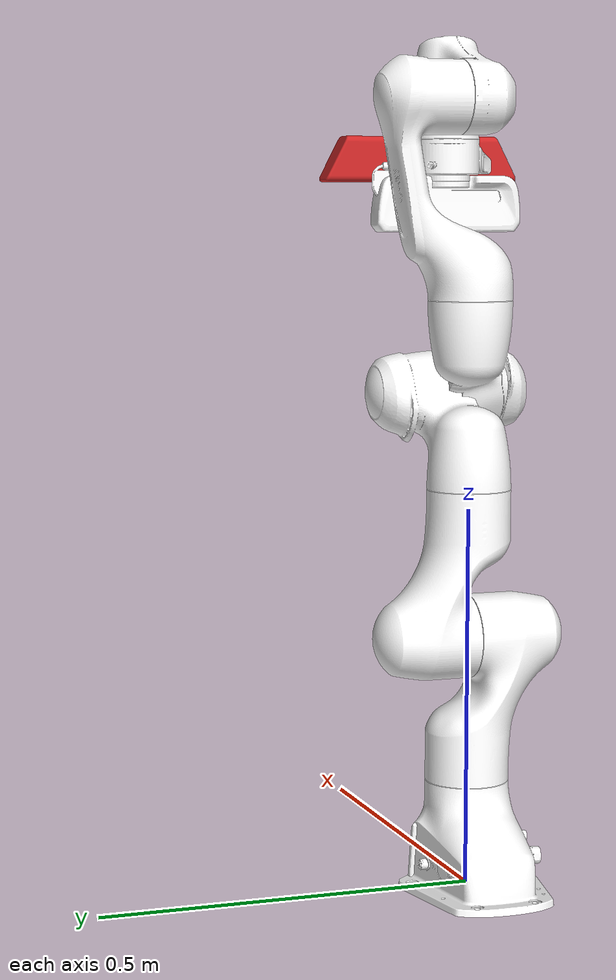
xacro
<?xml version="1.0" encoding="utf-8"?>
<robot xmlns:xacro="http://www.ros.org/wiki/xacro" name="panda">

	<xacro:arg name="gazebo" default="true"/>
	<xacro:arg name="robot_name" default="panda"/>
	<xacro:arg name="namespace" default=""/>
	<xacro:arg name="hardware_interface" default="PositionJointInterface"/>

	<xacro:include filename="$(find franka_gazebo)/robots/panda_arm.xacro">
		<xacro:arg name="gazebo" value="${gazebo}"/>
	</xacro:include>

	<xacro:include filename="$(find franka_gazebo)/robots/hand.xacro">
	</xacro:include>

	<xacro:include filename="$(find kinect)/urdf/kinect.urdf.xacro"/>
	<joint name="camera" type="fixed">
		<axis xyz="0 0 0" />
		<origin xyz="0.1 0 0 " rpy="${3.1415} ${-3.1415/2} 0"/>
		<parent link="panda_hand"/>
		<child link="base"/>
	  </joint>

	<xacro:panda_arm arm_id="$(arg robot_name)" connected_to='world' hardware_interface='$(arg hardware_interface)'/>
	<xacro:hand ns="$(arg robot_name)" rpy="0 0 0" connected_to="$(arg robot_name)_link8"/>
</robot>

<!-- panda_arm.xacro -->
<robot xmlns:xacro="http://www.ros.org/wiki/xacro" name="panda">

  <xacro:macro name="panda_arm" params="arm_id:='panda' package_name:='franka_gazebo' connected_to:='' xyz:='0 0 0' rpy:='0 0 0' hardware_interface:=''">
    <xacro:unless value="${not connected_to}">
      <link name="${connected_to}"/>
      <joint name="${arm_id}_joint_${connected_to}" type="fixed">
        <parent link="${connected_to}"/>
        <child link="${arm_id}_link0"/>
        <origin rpy="${rpy}" xyz="${xyz}"/>
      </joint>
    </xacro:unless>

    <xacro:arg name="gazebo" default="true"/>
    <xacro:arg name="hardware_interface" default="PositionJointInterface"/>
    <xacro:if value="$(arg gazebo)">
      <!-- Gazebo Tags -->
      <xacro:include filename="$(find franka_gazebo)/robots/panda_arm.gazebo.xacro"/>
    </xacro:if>

    <link name="${arm_id}_link0">
      <inertial>
        <mass value="2.92" />
        <origin xyz="-0.025566 -2.88e-05 0.057332" rpy="0 0 0" />
        <inertia ixx="0.00782229414331" ixy="-1.56191622996e-05" ixz="-0.00126005738123" iyy="0.0109027971813" iyz="1.08233858202e-05" izz="0.0102355503949" />
      </inertial>
      <visual>
        <origin xyz="${xyz}" rpy="${rpy}"/>
        <geometry>
          <mesh filename="package://${package_name}/meshes/visual/link0.dae"/>
        </geometry>
        <material name="">
          <color rgba="1 1 1 1"/>
        </material>
      </visual>
      <collision>
        <origin xyz="${xyz}" rpy="${rpy}"/>
        <geometry>
          <mesh filename="package://${package_name}/meshes/collision/link0.stl"/>
        </geometry>
      </collision>
    </link>

    <link name="${arm_id}_link1">
      <inertial>
        <mass value="2.74" />
        <origin xyz="0 -0.0324958 -0.0675818" rpy="0 0 0" />
        <inertia ixx="0.0180416958283" ixy="0.0" ixz="0.0" iyy="0.0159136071891" iyz="0.0046758424612" izz="0.00620690827127" />
      </inertial>
      <visual>
        <origin xyz="${xyz}" rpy="${rpy}"/>
        <geometry>
          <mesh filename="package://${package_name}/meshes/visual/link1.dae"/>
        </geometry>
        <material name="">
          <color rgba="1 1 1 1"/>
        </material>
      </visual>
      <collision>
        <origin xyz="${xyz}" rpy="${rpy}"/>
        <geometry>
          <mesh filename="package://${package_name}/meshes/collision/link1.stl"/>
        </geometry>
      </collision>
    </link>

    <joint name="${arm_id}_joint1" type="revolute">
      <safety_controller k_position="100.0" k_velocity="40.0" soft_lower_limit="-2.8973" soft_upper_limit="2.8973"/>
      <origin rpy="0 0 0" xyz="0 0 0.333"/>
      <parent link="${arm_id}_link0"/>
      <child link="${arm_id}_link1"/>
      <axis xyz="0 0 1"/>
      <limit effort="2000" lower="-2.8973" upper="2.8973" velocity="2.1750"/>
    </joint>

    <link name="${arm_id}_link2">
      <inertial>
        <mass value="2.74" />
        <origin xyz="0 -0.06861 0.0322285" rpy="0 0 0" />
        <inertia ixx="0.0182856182281" ixy="0.0" ixz="0.0" iyy="0.00621358421175" iyz="-0.00472844221905" izz="0.0161514346309" />
      </inertial>
      <visual>
        <origin xyz="${xyz}" rpy="${rpy}"/>
        <geometry>
          <mesh filename="package://${package_name}/meshes/visual/link2.dae"/>
        </geometry>
        <material name="">
          <color rgba="1 1 1 1"/>
        </material>
      </visual>
      <collision>
        <origin xyz="${xyz}" rpy="${rpy}"/>
        <geometry>
          <mesh filename="package://${package_name}/meshes/collision/link2.stl"/>
        </geometry>
      </collision>
    </link>

    <joint name="${arm_id}_joint2" type="revolute">
      <safety_controller k_position="100.0" k_velocity="40.0" soft_lower_limit="-1.7628" soft_upper_limit="1.7628"/>
      <origin rpy="${-pi/2} 0 0" xyz="0 0 0"/>
      <parent link="${arm_id}_link1"/>
      <child link="${arm_id}_link2"/>
      <axis xyz="0 0 1"/>
      <limit effort="2000" lower="-1.7628" upper="1.7628" velocity="2.1750"/>
    </joint>

    <link name="${arm_id}_link3">
      <inertial>
        <mass value="2.38" />
        <origin xyz="0.0469893 0.0316374 -0.031704" rpy="0 0 0" />
        <inertia ixx="0.00771376630908" ixy="-0.00248490625138" ixz="-0.00332147581033" iyy="0.00989108008727" iyz="-0.00217796151484" izz="0.00811723558464" />
      </inertial>
      <visual>
        <origin xyz="${xyz}" rpy="${rpy}"/>
        <geometry>
          <mesh filename="package://${package_name}/meshes/visual/link3.dae"/>
        </geometry>
        <material name="">
          <color rgba="1 1 1 1"/>
        </material>
      </visual>
      <collision>
        <origin xyz="${xyz}" rpy="${rpy}"/>
        <geometry>
          <mesh filename="package://${package_name}/meshes/collision/link3.stl"/>
        </geometry>
      </collision>
    </link>

    <joint name="${arm_id}_joint3" type="revolute">
      <safety_controller k_position="100.0" k_velocity="40.0" soft_lower_limit="-2.8973" soft_upper_limit="2.8973"/>
      <origin rpy="${pi/2} 0 0" xyz="0 -0.316 0"/>
      <parent link="${arm_id}_link2"/>
      <child link="${arm_id}_link3"/>
      <axis xyz="0 0 1"/>
      <limit effort="2000" lower="-2.8973" upper="2.8973" velocity="2.1750"/>
    </joint>

    <link name="${arm_id}_link4">
      <inertial>
        <mass value="2.38" />
        <origin xyz="-0.0360446 0.0336853 0.031882" rpy="0 0 0" />
        <inertia ixx="0.00799663881132" ixy="0.00347095570217" ixz="-0.00241222942995" iyy="0.00825390705278" iyz="0.00235774044121" izz="0.0102515004345" />
      </inertial>
      <visual>
        <origin xyz="${xyz}" rpy="${rpy}"/>
        <geometry>
          <mesh filename="package://${package_name}/meshes/visual/link4.dae"/>
        </geometry>
        <material name="">
          <color rgba="1 1 1 1"/>
        </material>
      </visual>
      <collision>
        <origin xyz="${xyz}" rpy="${rpy}"/>
        <geometry>
          <mesh filename="package://${package_name}/meshes/collision/link4.stl"/>
        </geometry>
      </collision>
    </link>

    <joint name="${arm_id}_joint4" type="revolute">
      <safety_controller k_position="100.0" k_velocity="40.0" soft_lower_limit="-3.0718" soft_upper_limit="0.0698"/>
      <!-- soft_upper_limitr should be -0.0698, but that brakes simulation when initial position for this joint is 0.0 -->
      <origin rpy="${pi/2} 0 0" xyz="0.0825 0 0"/>
      <parent link="${arm_id}_link3"/>
      <child link="${arm_id}_link4"/>
      <axis xyz="0 0 1"/>
      <limit effort="2000" lower="-3.0718" upper="0.0698" velocity="2.1750"/>
      <!-- upper should be -0.0698, but that brakes simulation when initial position for this joint is 0.0 -->
    </joint>

    <link name="${arm_id}_link5">
      <inertial>
        <mass value="2.74" />
        <origin xyz="0 0.0610427 -0.104176" rpy="0 0 0" />
        <inertia ixx="0.030371374513" ixy="6.50283587108e-07" ixz="-1.05129179916e-05" iyy="0.0288752887402" iyz="-0.00775653445787" izz="0.00444134056164" />
      </inertial>
      <visual>
        <origin xyz="${xyz}" rpy="${rpy}"/>
        <geometry>
          <mesh filename="package://${package_name}/meshes/visual/link5.dae"/>
        </geometry>
        <material name="">
          <color rgba="1 1 1 1"/>
        </material>
      </visual>
      <collision>
        <origin xyz="${xyz}" rpy="${rpy}"/>
        <geometry>
          <mesh filename="package://${package_name}/meshes/collision/link5.stl"/>
        </geometry>
      </collision>
    </link>

    <joint name="${arm_id}_joint5" type="revolute">
      <safety_controller k_position="100.0" k_velocity="40.0" soft_lower_limit="-2.8973" soft_upper_limit="2.8973"/>
      <origin rpy="${-pi/2} 0 0" xyz="-0.0825 0.384 0"/>
      <parent link="${arm_id}_link4"/>
      <child link="${arm_id}_link5"/>
      <axis xyz="0 0 1"/>
      <limit effort="2000" lower="-2.8973" upper="2.8973" velocity="2.6100"/>
    </joint>

    <link name="${arm_id}_link6">
      <inertial>
        <mass value="1.65" />
        <origin xyz="0.0510509 0.009108 0.0106343" rpy="0 0 0" />
        <inertia ixx="0.00303336450376" ixy="-0.000437276865508" ixz="0.000629257294877" iyy="0.00404479911567" iyz="0.000130472021025" izz="0.00558234286039" />
      </inertial>
      <visual>
        <origin xyz="${xyz}" rpy="${rpy}"/>
        <geometry>
          <mesh filename="package://${package_name}/meshes/visual/link6.dae"/>
        </geometry>
        <material name="">
          <color rgba="1 1 1 1"/>
        </material>
      </visual>
      <collision>
        <origin xyz="${xyz}" rpy="${rpy}"/>
        <geometry>
          <mesh filename="package://${package_name}/meshes/collision/link6.stl"/>
        </geometry>
      </collision>
    </link>

    <joint name="${arm_id}_joint6" type="revolute">
      <safety_controller k_position="100.0" k_velocity="40.0" soft_lower_limit="-0.0175" soft_upper_limit="3.7525"/>
      <origin rpy="${pi/2} 0 0" xyz="0 0 0"/>
      <parent link="${arm_id}_link5"/>
      <child link="${arm_id}_link6"/>
      <axis xyz="0 0 1"/>
      <limit effort="12" lower="-0.0175" upper="3.7525" velocity="2.6100"/>
    </joint>

    <link name="${arm_id}_link7">
      <inertial>
        <mass value="0.54" />
        <origin xyz="0.0109695 0.0107965 0.0650411" rpy="0 0 0" />
        <inertia ixx="0.000888868887021" ixy="-0.00012239074652" ixz="3.98699829666e-05" iyy="0.000888001373233" iyz="-9.33825115206e-05" izz="0.0007176834609" />
      </inertial>
      <visual>
        <origin xyz="${xyz}" rpy="${rpy}"/>
        <geometry>
          <mesh filename="package://${package_name}/meshes/visual/link7.dae"/>
        </geometry>
        <material name="">
          <color rgba="1 1 1 1"/>
        </material>
      </visual>
      <collision>
        <origin xyz="${xyz}" rpy="${rpy}"/>
        <geometry>
          <mesh filename="package://${package_name}/meshes/collision/link7.stl"/>
        </geometry>
      </collision>
    </link>

    <joint name="${arm_id}_joint7" type="revolute">
      <safety_controller k_position="100.0" k_velocity="40.0" soft_lower_limit="-2.8973" soft_upper_limit="2.8973"/>
      <origin rpy="${pi/2} 0 0" xyz="0.088 0 0"/>
      <parent link="${arm_id}_link6"/>
      <child link="${arm_id}_link7"/>
      <axis xyz="0 0 1"/>
      <limit effort="12" lower="-2.8973" upper="2.8973" velocity="2.6100"/>
    </joint>

    <link name="${arm_id}_link8"/>

    <joint name="${arm_id}_joint8" type="fixed">
      <origin rpy="0 0 0" xyz="0 0 0.107"/>
      <parent link="${arm_id}_link7"/>
      <child link="${arm_id}_link8"/>
      <axis xyz="0 0 0"/>
    </joint>

  </xacro:macro>
</robot>

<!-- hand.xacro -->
<robot xmlns:xacro="http://www.ros.org/wiki/xacro" name="hand">
  <xacro:macro name="hand" params="connected_to:='' ns:='' rpy:='0 0 0' xyz:='0 0 0' ">
    <xacro:unless value="${connected_to == ''}">
      <joint name="${ns}_hand_joint" type="fixed">
        <parent link="${connected_to}"/>
        <child link="${ns}_hand"/>
        <origin xyz="${xyz}" rpy="${rpy}"/>
      </joint>
    </xacro:unless>

    <xacro:arg name="gazebo" default="true"/>
    <xacro:if value="$(arg gazebo)">
      <!-- Gazebo Tags -->
      <xacro:include filename="$(find franka_gazebo)/robots/hand.gazebo.xacro"/>
    </xacro:if>

    <link name="${ns}_hand">
      <inertial>
        <mass value="0.1" />
        <origin xyz="0 0.0015244 0.0275912" rpy="0 0 0" />
        <inertia ixx="0.00278560230025" ixy="0.0" ixz="0.0" iyy="0.000400033405336" iyz="0.0" izz="0.00256378041832" />
      </inertial>
      <visual>
        <origin xyz="${xyz}" rpy="0 0 0"/>
        <geometry>
          <mesh filename="package://franka_gazebo/meshes/visual/hand.dae"/>
        </geometry>
        <material name="">
          <color rgba="1 1 1 1"/>
        </material>
      </visual>
      <collision>
        <origin xyz="${xyz}" rpy="0 0 0"/>
        <geometry>
          <mesh filename="package://franka_gazebo/meshes/collision/hand.stl"/>
        </geometry>
      </collision>
    </link>

    <link name="${ns}_leftfinger">
      <inertial>
        <mass value="0.03" />
        <origin xyz="0 0.0145644 0.0227941" rpy="0 0 0" />
        <inertia ixx="3.01220925051e-05" ixy="0.0" ixz="0.0" iyy="2.95873808038e-05" iyz="0.0" izz="6.95125211657e-06" />
      </inertial>
      <visual>
        <origin xyz="${xyz}" rpy="0 0 0"/>
        <geometry>
          <mesh filename="package://franka_gazebo/meshes/visual/finger.dae"/>
        </geometry>
        <material name="">
          <color rgba="1 1 1 1"/>
        </material>
      </visual>
      <collision>
        <origin xyz="${xyz}" rpy="0 0 0"/>
        <geometry>
          <mesh filename="package://franka_gazebo/meshes/collision/finger.stl"/>
        </geometry>
      </collision>
    </link>

    <link name="${ns}_rightfinger">
      <inertial>
        <mass value="0.03" />
        <origin xyz="0 0.0145644 0.0227941" rpy="0 0 ${pi}" />
        <inertia ixx="3.01220925051e-05" ixy="0.0" ixz="0.0" iyy="2.95873808038e-05" iyz="0.0" izz="6.95125211657e-06" />
      </inertial>
      <visual>
        <origin xyz="0 0 0" rpy="0 0 ${pi}"/>
        <geometry>
          <mesh filename="package://franka_gazebo/meshes/visual/finger.dae"/>
        </geometry>
        <material name="">
          <color rgba="1 1 1 1"/>
        </material>
      </visual>
      <collision>
        <origin xyz="0 0 0" rpy="0 0 ${pi}"/>
        <geometry>
          <mesh filename="package://franka_gazebo/meshes/collision/finger.stl"/>
        </geometry>
      </collision>
    </link>

    <joint name="${ns}_finger_joint1" type="prismatic">
      <parent link="${ns}_hand"/>
      <child link="${ns}_leftfinger"/>
      <origin xyz="0 0 0.0584" rpy="0 0 0"/>
      <axis xyz="0 1 0"/>
      <limit effort="20" lower="-0.001" upper="0.04" velocity="0.3"/>
    </joint>

    <joint name="${ns}_finger_joint2" type="prismatic">
      <parent link="${ns}_hand"/>
      <child link="${ns}_rightfinger"/>
      <origin xyz="0 0 0.0584" rpy="0 0 0"/>
      <axis xyz="0 -1 0"/>
      <limit effort="20" lower="-0.001" upper="0.04" velocity="0.3"/>
    </joint>

  </xacro:macro>
</robot>

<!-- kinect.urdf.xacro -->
<robot name = "kinect" xmlns:xacro="http://www.ros.org/wiki/xacro">

  <xacro:include filename="$(find kinect)/urdf/kinect.gazebo.xacro" />

  <link name="base"/>

  <!--Camera-->

    <joint name="base_camera_joint" type="fixed">
      <axis xyz="0 0 0" />
      <origin xyz="0 0 0" rpy="0 0 0"/>
      <parent link="base"/>
      <child link="base_camera_link"/>
    </joint>

    <link name="base_camera_link">
      <collision>
        <origin xyz="0 0 0" rpy="0 0 0"/>
        <geometry>
      <box size="0.1 0.1 0.1"/>
        </geometry>
      </collision>

      <visual>
        <origin xyz="0 0 0" rpy="0 0 0"/>
        <geometry>
          <mesh filename="package://kinect/meshes/kinect.dae"/>
        </geometry>
        <material name="red"/>
      </visual>

      <inertial>
        <mass value="0.1" />
        <origin xyz="0 0 0" rpy="0 0 0"/>
        <inertia ixx="1e-6" ixy="0" ixz="0" iyy="1e-6" iyz="0" izz="1e-6" />
      </inertial>
    </link>

    <joint name="base_camera_depth_joint" type="fixed">
      <axis xyz="0 0 1" />
      <origin xyz="0 0 0" rpy="${-3.1415/2} 0 ${-3.1415/2}"/>
      <parent link="base_camera_link"/>
      <child link="base_camera_depth_link"/>
    </joint>

    <link name="base_camera_depth_link"/>
</robot>
